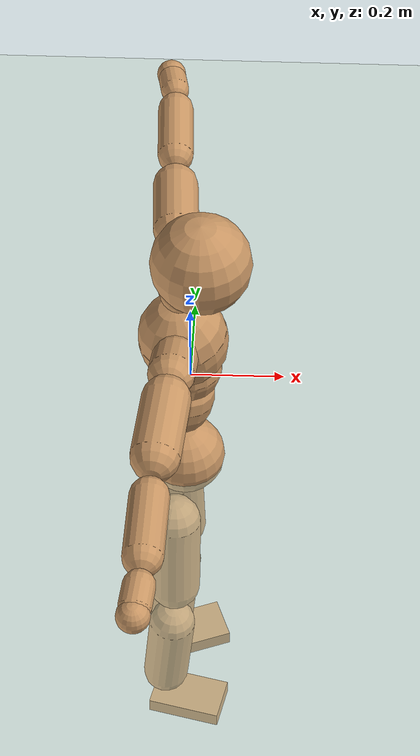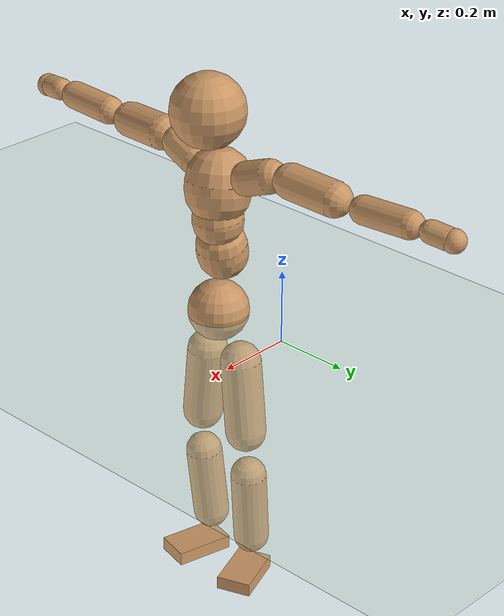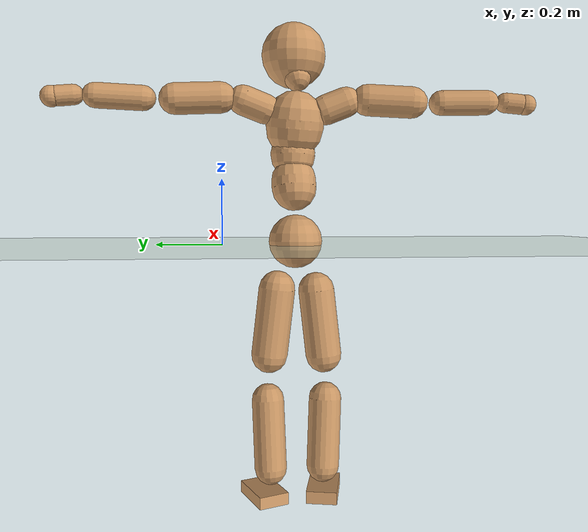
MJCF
<mujoco model="humanoid">
  <compiler coordinate="local" angle="radian"/>
  <default>
    <joint damping="0.0" armature="0.01" stiffness="0.0" limited="true"/>
    <geom conaffinity="1" condim="3" contype="7" margin="0.001" rgba="0.8 0.6 .4 1"/>
  </default>
  <asset>
    <texture type="skybox" builtin="gradient" rgb1=".4 .5 .6" rgb2="0 0 0" width="100" height="100"/>
    <texture builtin="flat" height="1278" mark="cross" markrgb="1 1 1" name="texgeom" random="0.01" rgb1="0.8 0.6 0.4" rgb2="0.8 0.6 0.4" type="cube" width="127"/>
    <texture builtin="checker" height="100" name="texplane" rgb1="0 0 0" rgb2="0.8 0.8 0.8" type="2d" width="100"/>
    <material name="MatPlane" reflectance="0.5" shininess="1" specular="1" texrepeat="60 60" texture="texplane"/>
    <material name="geom" texture="texgeom" texuniform="true"/>
  </asset>
  <worldbody>
    <light cutoff="100" diffuse="1 1 1" dir="-0 0 -1.3" directional="true" exponent="1" pos="0 0 1.3" specular=".1 .1 .1"/>
    <geom conaffinity="1" condim="3" name="floor" pos="0 0 0" rgba="0.8 0.9 0.8 1" size="100 100 .2" type="plane" material="MatPlane"/>
    <body name="Pelvis" pos="-0.0013 -0.2253 0.0095">
      <freejoint name="Pelvis"/>
      <geom type="sphere" contype="1" conaffinity="1" density="500" size="0.0826" pos="0.0000 0.0000 0.0000" name="Pelvis"/>
      <body name="L_Hip" pos="-0.0237 0.0517 -0.0751">
        <joint name="L_Hip_x" type="hinge" pos="0 0 0" axis="1 0 0" stiffness="800" damping="80" armature="0.02" range="-180.0000 180.0000"/>
        <joint name="L_Hip_y" type="hinge" pos="0 0 0" axis="0 1 0" stiffness="800" damping="80" armature="0.02" range="-180.0000 180.0000"/>
        <joint name="L_Hip_z" type="hinge" pos="0 0 0" axis="0 0 1" stiffness="800" damping="80" armature="0.02" range="-180.0000 180.0000"/>
        <geom type="capsule" contype="1" conaffinity="1" density="500" fromto="0.0013 0.0078 -0.0687 0.0054 0.0313 -0.2747" size="0.0556" name="L_Hip"/>
        <body name="L_Knee" pos="0.0067 0.0391 -0.3434">
          <joint name="L_Knee_x" type="hinge" pos="0 0 0" axis="1 0 0" stiffness="800" damping="80" armature="0.02" range="-180.0000 180.0000"/>
          <joint name="L_Knee_y" type="hinge" pos="0 0 0" axis="0 1 0" stiffness="800" damping="80" armature="0.02" range="-180.0000 180.0000"/>
          <joint name="L_Knee_z" type="hinge" pos="0 0 0" axis="0 0 1" stiffness="800" damping="80" armature="0.02" range="-180.0000 180.0000"/>
          <geom type="capsule" contype="1" conaffinity="1" density="500" fromto="-0.0065 -0.0023 -0.0703 -0.0260 -0.0090 -0.2812" size="0.0494" name="L_Knee"/>
          <body name="L_Ankle" pos="-0.0325 -0.0113 -0.3515">
            <joint name="L_Ankle_x" type="hinge" pos="0 0 0" axis="1 0 0" stiffness="800" damping="80" armature="0.02" range="-180.0000 180.0000"/>
            <joint name="L_Ankle_y" type="hinge" pos="0 0 0" axis="0 1 0" stiffness="800" damping="80" armature="0.02" range="-180.0000 180.0000"/>
            <joint name="L_Ankle_z" type="hinge" pos="0 0 0" axis="0 0 1" stiffness="800" damping="80" armature="0.02" range="-180.0000 180.0000"/>
            <geom type="box" contype="1" conaffinity="1" density="500" pos="0.0534 0.0199 -0.0260" size="0.0765 0.0479 0.0187" quat="0.9841 0.0000 0.0000 0.1777" name="L_Ankle"/>
            <body name="L_Toe" pos="0.1068 0.0399 -0.0521">
              <joint name="L_Toe_x" type="hinge" pos="0 0 0" axis="1 0 0" stiffness="500" damping="50" armature="0.02" range="-180.0000 180.0000"/>
              <joint name="L_Toe_y" type="hinge" pos="0 0 0" axis="0 1 0" stiffness="500" damping="50" armature="0.02" range="-180.0000 180.0000"/>
              <joint name="L_Toe_z" type="hinge" pos="0 0 0" axis="0 0 1" stiffness="500" damping="50" armature="0.02" range="-180.0000 180.0000"/>
              <geom type="box" contype="1" conaffinity="1" density="500" pos="0.0000 0.0000 0.0263" size="0.001 0.0023 0.001" quat="0.9832 0.0000 0.0000 0.1827" name="L_Toe"/>
            </body>
          </body>
        </body>
      </body>
      <body name="R_Hip" pos="-0.0204 -0.0544 -0.0824">
        <joint name="R_Hip_x" type="hinge" pos="0 0 0" axis="1 0 0" stiffness="800" damping="80" armature="0.02" range="-180.0000 180.0000"/>
        <joint name="R_Hip_y" type="hinge" pos="0 0 0" axis="0 1 0" stiffness="800" damping="80" armature="0.02" range="-180.0000 180.0000"/>
        <joint name="R_Hip_z" type="hinge" pos="0 0 0" axis="0 0 1" stiffness="800" damping="80" armature="0.02" range="-180.0000 180.0000"/>
        <geom type="capsule" contype="1" conaffinity="1" density="500" fromto="-0.0008 -0.0075 -0.0672 -0.0031 -0.0302 -0.2689" size="0.0551" name="R_Hip"/>
        <body name="R_Knee" pos="-0.0039 -0.0377 -0.3362">
          <joint name="R_Knee_x" type="hinge" pos="0 0 0" axis="1 0 0" stiffness="800" damping="80" armature="0.02" range="-180.0000 180.0000"/>
          <joint name="R_Knee_y" type="hinge" pos="0 0 0" axis="0 1 0" stiffness="800" damping="80" armature="0.02" range="-180.0000 180.0000"/>
          <joint name="R_Knee_z" type="hinge" pos="0 0 0" axis="0 0 1" stiffness="800" damping="80" armature="0.02" range="-180.0000 180.0000"/>
          <geom type="capsule" contype="1" conaffinity="1" density="500" fromto="-0.0060 0.0031 -0.0689 -0.0242 0.0124 -0.2755" size="0.0502" name="R_Knee"/>
          <body name="R_Ankle" pos="-0.0302 0.0155 -0.3444">
            <joint name="R_Ankle_x" type="hinge" pos="0 0 0" axis="1 0 0" stiffness="800" damping="80" armature="0.02" range="-180.0000 180.0000"/>
            <joint name="R_Ankle_y" type="hinge" pos="0 0 0" axis="0 1 0" stiffness="800" damping="80" armature="0.02" range="-180.0000 180.0000"/>
            <joint name="R_Ankle_z" type="hinge" pos="0 0 0" axis="0 0 1" stiffness="800" damping="80" armature="0.02" range="-180.0000 180.0000"/>
            <geom type="box" contype="1" conaffinity="1" density="500" pos="0.0576 -0.0132 -0.0270" size="0.0808 0.0477 0.0192" quat="0.9937 0.0000 0.0000 -0.1121" name="R_Ankle"/>
            <body name="R_Toe" pos="0.1151 -0.0263 -0.054">
              <joint name="R_Toe_x" type="hinge" pos="0 0 0" axis="1 0 0" stiffness="500" damping="50" armature="0.02" range="-180.0000 180.0000"/>
              <joint name="R_Toe_y" type="hinge" pos="0 0 0" axis="0 1 0" stiffness="500" damping="50" armature="0.02" range="-180.0000 180.0000"/>
              <joint name="R_Toe_z" type="hinge" pos="0 0 0" axis="0 0 1" stiffness="500" damping="50" armature="0.02" range="-180.0000 180.0000"/>
              <geom type="box" contype="1" conaffinity="1" density="500" pos="0.0000 0.0000 0.0294" size="0.0009 0.0023 0.0011" quat="0.9948 0.0000 0.0000 -0.1021" name="R_Toe"/>
            </body>
          </body>
        </body>
      </body>
      <body name="Torso" pos="-0.0231 0.0036 0.1094">
        <joint name="Torso_x" type="hinge" pos="0 0 0" axis="1 0 0" stiffness="1000" damping="100" armature="0.02" range="-180.0000 180.0000"/>
        <joint name="Torso_y" type="hinge" pos="0 0 0" axis="0 1 0" stiffness="1000" damping="100" armature="0.02" range="-180.0000 180.0000"/>
        <joint name="Torso_z" type="hinge" pos="0 0 0" axis="0 0 1" stiffness="1000" damping="100" armature="0.02" range="-180.0000 180.0000"/>
        <geom type="capsule" contype="1" conaffinity="1" density="500" fromto="0.0178 0.0026 0.0789 0.0119 0.0017 0.0526" size="0.0681" name="Torso"/>
        <body name="Spine" pos="0.0297 0.0043 0.1315">
          <joint name="Spine_x" type="hinge" pos="0 0 0" axis="1 0 0" stiffness="1000" damping="100" armature="0.02" range="-180.0000 180.0000"/>
          <joint name="Spine_y" type="hinge" pos="0 0 0" axis="0 1 0" stiffness="1000" damping="100" armature="0.02" range="-180.0000 180.0000"/>
          <joint name="Spine_z" type="hinge" pos="0 0 0" axis="0 0 1" stiffness="1000" damping="100" armature="0.02" range="-180.0000 180.0000"/>
          <geom type="capsule" contype="1" conaffinity="1" density="500" fromto="0.0018 -0.0009 0.0316 0.0012 -0.0006 0.0211" size="0.068" name="Spine"/>
          <body name="Chest" pos="0.003 -0.0016 0.0526">
            <joint name="Chest_x" type="hinge" pos="0 0 0" axis="1 0 0" stiffness="1000" damping="100" armature="0.02" range="-180.0000 180.0000"/>
            <joint name="Chest_y" type="hinge" pos="0 0 0" axis="0 1 0" stiffness="1000" damping="100" armature="0.02" range="-180.0000 180.0000"/>
            <joint name="Chest_z" type="hinge" pos="0 0 0" axis="0 0 1" stiffness="1000" damping="100" armature="0.02" range="-180.0000 180.0000"/>
            <geom type="capsule" contype="1" conaffinity="1" density="500" fromto="-0.0118 -0.0053 0.0762 -0.0079 -0.0035 0.0508" size="0.0884" name="Chest"/>
            <body name="Neck" pos="-0.0229 -0.0135 0.1851">
              <joint name="Neck_x" type="hinge" pos="0 0 0" axis="1 0 0" stiffness="500" damping="50" armature="0.02" range="-180.0000 180.0000"/>
              <joint name="Neck_y" type="hinge" pos="0 0 0" axis="0 1 0" stiffness="500" damping="50" armature="0.02" range="-180.0000 180.0000"/>
              <joint name="Neck_z" type="hinge" pos="0 0 0" axis="0 0 1" stiffness="500" damping="50" armature="0.02" range="-180.0000 180.0000"/>
              <geom type="capsule" contype="1" conaffinity="1" density="500" fromto="0.0098 0.0018 0.0183 0.0394 0.0071 0.0731" size="0.0412" name="Neck"/>
              <body name="Head" pos="0.0492 0.0089 0.0914">
                <joint name="Head_x" type="hinge" pos="0 0 0" axis="1 0 0" stiffness="500" damping="50" armature="0.02" range="-180.0000 180.0000"/>
                <joint name="Head_y" type="hinge" pos="0 0 0" axis="0 1 0" stiffness="500" damping="50" armature="0.02" range="-180.0000 180.0000"/>
                <joint name="Head_z" type="hinge" pos="0 0 0" axis="0 0 1" stiffness="500" damping="50" armature="0.02" range="-180.0000 180.0000"/>
                <geom type="sphere" contype="1" conaffinity="1" density="500" size="0.0989" pos="0.0000 0.0000 0.0000" name="Head"/>
              </body>
            </body>
            <body name="L_Thorax" pos="-0.0159 0.0634 0.0979">
              <joint name="L_Thorax_x" type="hinge" pos="0 0 0" axis="1 0 0" stiffness="500" damping="50" armature="0.02" range="-180.0000 180.0000"/>
              <joint name="L_Thorax_y" type="hinge" pos="0 0 0" axis="0 1 0" stiffness="500" damping="50" armature="0.02" range="-180.0000 180.0000"/>
              <joint name="L_Thorax_z" type="hinge" pos="0 0 0" axis="0 0 1" stiffness="500" damping="50" armature="0.02" range="-180.0000 180.0000"/>
              <geom type="capsule" contype="1" conaffinity="1" density="500" fromto="-0.0032 0.0224 0.0081 -0.0126 0.0896 0.0324" size="0.0451" name="L_Thorax"/>
              <body name="L_Shoulder" pos="-0.0158 0.112 0.0405">
                <joint name="L_Shoulder_x" type="hinge" pos="0 0 0" axis="1 0 0" stiffness="500" damping="50" armature="0.02" range="-720.0000 720.0000"/>
                <joint name="L_Shoulder_y" type="hinge" pos="0 0 0" axis="0 1 0" stiffness="500" damping="50" armature="0.02" range="-720.0000 720.0000"/>
                <joint name="L_Shoulder_z" type="hinge" pos="0 0 0" axis="0 0 1" stiffness="500" damping="50" armature="0.02" range="-720.0000 720.0000"/>
                <geom type="capsule" contype="1" conaffinity="1" density="500" fromto="-0.0027 0.0448 -0.0024 -0.0106 0.1792 -0.0097" size="0.0466" name="L_Shoulder"/>
                <body name="L_Elbow" pos="-0.0133 0.224 -0.0121">
                  <joint name="L_Elbow_x" type="hinge" pos="0 0 0" axis="1 0 0" stiffness="500" damping="50" armature="0.02" range="-720.0000 720.0000"/>
                  <joint name="L_Elbow_y" type="hinge" pos="0 0 0" axis="0 1 0" stiffness="500" damping="50" armature="0.02" range="-720.0000 720.0000"/>
                  <joint name="L_Elbow_z" type="hinge" pos="0 0 0" axis="0 0 1" stiffness="500" damping="50" armature="0.02" range="-720.0000 720.0000"/>
                  <geom type="capsule" contype="1" conaffinity="1" density="500" fromto="-0.0020 0.0450 0.0016 -0.0080 0.1800 0.0063" size="0.0371" name="L_Elbow"/>
                  <body name="L_Wrist" pos="-0.01 0.225 0.0078">
                    <joint name="L_Wrist_x" type="hinge" pos="0 0 0" axis="1 0 0" stiffness="300" damping="30" armature="0.02" range="-180.0000 180.0000"/>
                    <joint name="L_Wrist_y" type="hinge" pos="0 0 0" axis="0 1 0" stiffness="300" damping="30" armature="0.02" range="-180.0000 180.0000"/>
                    <joint name="L_Wrist_z" type="hinge" pos="0 0 0" axis="0 0 1" stiffness="300" damping="30" armature="0.02" range="-180.0000 180.0000"/>
                    <geom type="capsule" contype="1" conaffinity="1" density="500" fromto="-0.0027 0.0149 -0.0019 -0.0106 0.0597 -0.0075" size="0.0296" name="L_Wrist"/>
                    <body name="L_Hand" pos="-0.0133 0.0746 -0.0093">
                      <joint name="L_Hand_x" type="hinge" pos="0 0 0" axis="1 0 0" stiffness="300" damping="30" armature="0.02" range="-180.0000 180.0000"/>
                      <joint name="L_Hand_y" type="hinge" pos="0 0 0" axis="0 1 0" stiffness="300" damping="30" armature="0.02" range="-180.0000 180.0000"/>
                      <joint name="L_Hand_z" type="hinge" pos="0 0 0" axis="0 0 1" stiffness="300" damping="30" armature="0.02" range="-180.0000 180.0000"/>
                      <geom type="sphere" contype="1" conaffinity="1" density="500" size="0.0308" pos="0.0000 0.0000 0.0000" name="L_Hand"/>
                    </body>
                  </body>
                </body>
              </body>
            </body>
            <body name="R_Thorax" pos="-0.0201 -0.0765 0.0979">
              <joint name="R_Thorax_x" type="hinge" pos="0 0 0" axis="1 0 0" stiffness="500" damping="50" armature="0.02" range="-180.0000 180.0000"/>
              <joint name="R_Thorax_y" type="hinge" pos="0 0 0" axis="0 1 0" stiffness="500" damping="50" armature="0.02" range="-180.0000 180.0000"/>
              <joint name="R_Thorax_z" type="hinge" pos="0 0 0" axis="0 0 1" stiffness="500" damping="50" armature="0.02" range="-180.0000 180.0000"/>
              <geom type="capsule" contype="1" conaffinity="1" density="500" fromto="-0.0013 -0.0207 0.0082 -0.0050 -0.0828 0.0329" size="0.0457" name="R_Thorax"/>
              <body name="R_Shoulder" pos="-0.0063 -0.1035 0.0411">
                <joint name="R_Shoulder_x" type="hinge" pos="0 0 0" axis="1 0 0" stiffness="500" damping="50" armature="0.02" range="-720.0000 720.0000"/>
                <joint name="R_Shoulder_y" type="hinge" pos="0 0 0" axis="0 1 0" stiffness="500" damping="50" armature="0.02" range="-720.0000 720.0000"/>
                <joint name="R_Shoulder_z" type="hinge" pos="0 0 0" axis="0 0 1" stiffness="500" damping="50" armature="0.02" range="-720.0000 720.0000"/>
                <geom type="capsule" contype="1" conaffinity="1" density="500" fromto="-0.0044 -0.0450 -0.0023 -0.0177 -0.1800 -0.0092" size="0.0478" name="R_Shoulder"/>
                <body name="R_Elbow" pos="-0.0221 -0.2249 -0.0115">
                  <joint name="R_Elbow_x" type="hinge" pos="0 0 0" axis="1 0 0" stiffness="500" damping="50" armature="0.02" range="-720.0000 720.0000"/>
                  <joint name="R_Elbow_y" type="hinge" pos="0 0 0" axis="0 1 0" stiffness="500" damping="50" armature="0.02" range="-720.0000 720.0000"/>
                  <joint name="R_Elbow_z" type="hinge" pos="0 0 0" axis="0 0 1" stiffness="500" damping="50" armature="0.02" range="-720.0000 720.0000"/>
                  <geom type="capsule" contype="1" conaffinity="1" density="500" fromto="-0.0012 -0.0464 0.0012 -0.0047 -0.1856 0.0047" size="0.0383" name="R_Elbow"/>
                  <body name="R_Wrist" pos="-0.0058 -0.232 0.0059">
                    <joint name="R_Wrist_x" type="hinge" pos="0 0 0" axis="1 0 0" stiffness="300" damping="30" armature="0.02" range="-180.0000 180.0000"/>
                    <joint name="R_Wrist_y" type="hinge" pos="0 0 0" axis="0 1 0" stiffness="300" damping="30" armature="0.02" range="-180.0000 180.0000"/>
                    <joint name="R_Wrist_z" type="hinge" pos="0 0 0" axis="0 0 1" stiffness="300" damping="30" armature="0.02" range="-180.0000 180.0000"/>
                    <geom type="capsule" contype="1" conaffinity="1" density="500" fromto="-0.0018 -0.0154 -0.0015 -0.0070 -0.0618 -0.0060" size="0.0305" name="R_Wrist"/>
                    <body name="R_Hand" pos="-0.0088 -0.0772 -0.0075">
                      <joint name="R_Hand_x" type="hinge" pos="0 0 0" axis="1 0 0" stiffness="300" damping="30" armature="0.02" range="-180.0000 180.0000"/>
                      <joint name="R_Hand_y" type="hinge" pos="0 0 0" axis="0 1 0" stiffness="300" damping="30" armature="0.02" range="-180.0000 180.0000"/>
                      <joint name="R_Hand_z" type="hinge" pos="0 0 0" axis="0 0 1" stiffness="300" damping="30" armature="0.02" range="-180.0000 180.0000"/>
                      <geom type="sphere" contype="1" conaffinity="1" density="500" size="0.0315" pos="0.0000 0.0000 0.0000" name="R_Hand"/>
                    </body>
                  </body>
                </body>
              </body>
            </body>
          </body>
        </body>
      </body>
    </body>
  </worldbody>
  <actuator>
    <motor name="L_Hip_x" joint="L_Hip_x" gear="500"/>
    <motor name="L_Hip_y" joint="L_Hip_y" gear="500"/>
    <motor name="L_Hip_z" joint="L_Hip_z" gear="500"/>
    <motor name="L_Knee_x" joint="L_Knee_x" gear="500"/>
    <motor name="L_Knee_y" joint="L_Knee_y" gear="500"/>
    <motor name="L_Knee_z" joint="L_Knee_z" gear="500"/>
    <motor name="L_Ankle_x" joint="L_Ankle_x" gear="500"/>
    <motor name="L_Ankle_y" joint="L_Ankle_y" gear="500"/>
    <motor name="L_Ankle_z" joint="L_Ankle_z" gear="500"/>
    <motor name="L_Toe_x" joint="L_Toe_x" gear="500"/>
    <motor name="L_Toe_y" joint="L_Toe_y" gear="500"/>
    <motor name="L_Toe_z" joint="L_Toe_z" gear="500"/>
    <motor name="R_Hip_x" joint="R_Hip_x" gear="500"/>
    <motor name="R_Hip_y" joint="R_Hip_y" gear="500"/>
    <motor name="R_Hip_z" joint="R_Hip_z" gear="500"/>
    <motor name="R_Knee_x" joint="R_Knee_x" gear="500"/>
    <motor name="R_Knee_y" joint="R_Knee_y" gear="500"/>
    <motor name="R_Knee_z" joint="R_Knee_z" gear="500"/>
    <motor name="R_Ankle_x" joint="R_Ankle_x" gear="500"/>
    <motor name="R_Ankle_y" joint="R_Ankle_y" gear="500"/>
    <motor name="R_Ankle_z" joint="R_Ankle_z" gear="500"/>
    <motor name="R_Toe_x" joint="R_Toe_x" gear="500"/>
    <motor name="R_Toe_y" joint="R_Toe_y" gear="500"/>
    <motor name="R_Toe_z" joint="R_Toe_z" gear="500"/>
    <motor name="Torso_x" joint="Torso_x" gear="500"/>
    <motor name="Torso_y" joint="Torso_y" gear="500"/>
    <motor name="Torso_z" joint="Torso_z" gear="500"/>
    <motor name="Spine_x" joint="Spine_x" gear="500"/>
    <motor name="Spine_y" joint="Spine_y" gear="500"/>
    <motor name="Spine_z" joint="Spine_z" gear="500"/>
    <motor name="Chest_x" joint="Chest_x" gear="500"/>
    <motor name="Chest_y" joint="Chest_y" gear="500"/>
    <motor name="Chest_z" joint="Chest_z" gear="500"/>
    <motor name="Neck_x" joint="Neck_x" gear="500"/>
    <motor name="Neck_y" joint="Neck_y" gear="500"/>
    <motor name="Neck_z" joint="Neck_z" gear="500"/>
    <motor name="Head_x" joint="Head_x" gear="500"/>
    <motor name="Head_y" joint="Head_y" gear="500"/>
    <motor name="Head_z" joint="Head_z" gear="500"/>
    <motor name="L_Thorax_x" joint="L_Thorax_x" gear="500"/>
    <motor name="L_Thorax_y" joint="L_Thorax_y" gear="500"/>
    <motor name="L_Thorax_z" joint="L_Thorax_z" gear="500"/>
    <motor name="L_Shoulder_x" joint="L_Shoulder_x" gear="500"/>
    <motor name="L_Shoulder_y" joint="L_Shoulder_y" gear="500"/>
    <motor name="L_Shoulder_z" joint="L_Shoulder_z" gear="500"/>
    <motor name="L_Elbow_x" joint="L_Elbow_x" gear="500"/>
    <motor name="L_Elbow_y" joint="L_Elbow_y" gear="500"/>
    <motor name="L_Elbow_z" joint="L_Elbow_z" gear="500"/>
    <motor name="L_Wrist_x" joint="L_Wrist_x" gear="500"/>
    <motor name="L_Wrist_y" joint="L_Wrist_y" gear="500"/>
    <motor name="L_Wrist_z" joint="L_Wrist_z" gear="500"/>
    <motor name="L_Hand_x" joint="L_Hand_x" gear="500"/>
    <motor name="L_Hand_y" joint="L_Hand_y" gear="500"/>
    <motor name="L_Hand_z" joint="L_Hand_z" gear="500"/>
    <motor name="R_Thorax_x" joint="R_Thorax_x" gear="500"/>
    <motor name="R_Thorax_y" joint="R_Thorax_y" gear="500"/>
    <motor name="R_Thorax_z" joint="R_Thorax_z" gear="500"/>
    <motor name="R_Shoulder_x" joint="R_Shoulder_x" gear="500"/>
    <motor name="R_Shoulder_y" joint="R_Shoulder_y" gear="500"/>
    <motor name="R_Shoulder_z" joint="R_Shoulder_z" gear="500"/>
    <motor name="R_Elbow_x" joint="R_Elbow_x" gear="500"/>
    <motor name="R_Elbow_y" joint="R_Elbow_y" gear="500"/>
    <motor name="R_Elbow_z" joint="R_Elbow_z" gear="500"/>
    <motor name="R_Wrist_x" joint="R_Wrist_x" gear="500"/>
    <motor name="R_Wrist_y" joint="R_Wrist_y" gear="500"/>
    <motor name="R_Wrist_z" joint="R_Wrist_z" gear="500"/>
    <motor name="R_Hand_x" joint="R_Hand_x" gear="500"/>
    <motor name="R_Hand_y" joint="R_Hand_y" gear="500"/>
    <motor name="R_Hand_z" joint="R_Hand_z" gear="500"/>
  </actuator>
  <contact>
    <exclude body1="Torso" body2="Chest"/>
    <exclude body1="Head" body2="Chest"/>
    <exclude body1="R_Knee" body2="R_Toe"/>
    <exclude body1="R_Knee" body2="L_Ankle"/>
    <exclude body1="R_Knee" body2="L_Toe"/>
    <exclude body1="L_Knee" body2="L_Toe"/>
    <exclude body1="L_Knee" body2="R_Ankle"/>
    <exclude body1="L_Knee" body2="R_Toe"/>
    <exclude body1="L_Shoulder" body2="Chest"/>
    <exclude body1="R_Shoulder" body2="Chest"/>
  </contact>
  <sensor/>
  <size njmax="700" nconmax="700"/>
</mujoco>
